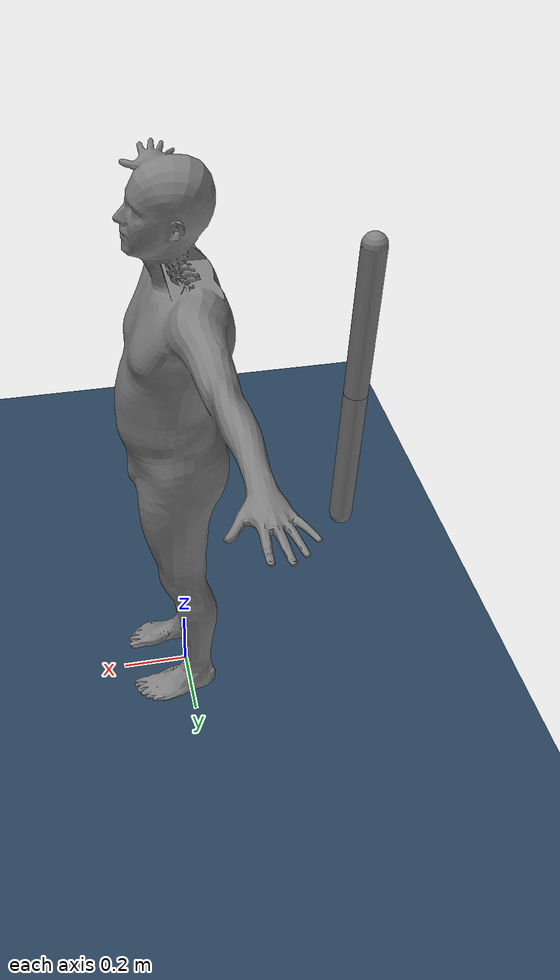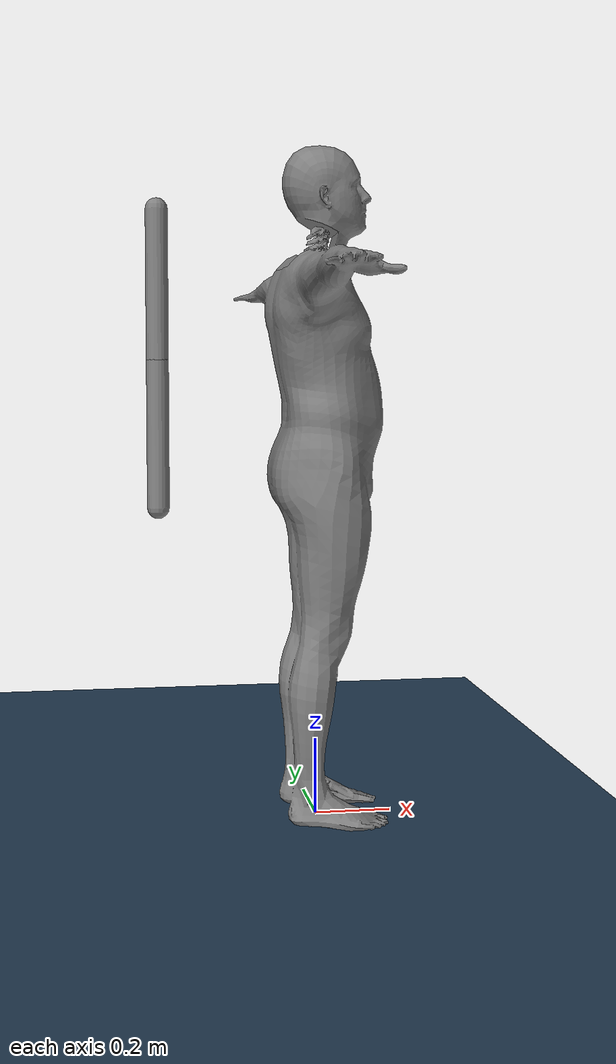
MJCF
<mujoco model="HumanRobotPhysicalContact">

    <!-- 编译器选项 -->
    <compiler meshdir="./" autolimits="true" angle="radian" />

    <!-- 0.002 is better-->
    <option timestep="0.002" iterations="100" ls_iterations="50" solver="Newton">
        <flag eulerdamp="enable" />
    </option>

    <!-- 模型统计信息 meansize: 物体的平均大小，用于自动调整渲染和相机设置 -->
    <statistic meansize=".05" center="0 0 0.3" extent="1" />

    <visual>
        <!-- 全局背景/雾颜色和透明度 -->
        <rgba haze="0.15 0.25 0.35 1" />
        <!-- 相关属性扩展：offwidth,离屏渲染的​​分辨率, elevation:相机的​​仰角, azimuth:相机的​​方位角 -->
        <global offwidth="2560" offheight="1440" elevation="-30" azimuth="120" />
        <!-- 渲染质量设置,阴影贴图的分辨率（4096表示高质量阴影） -->
        <quality shadowsize="4096" />
        <!-- 渲染参数设置 -->
        <map stiffness="700" shadowscale="0.5" fogstart="1" fogend="15" zfar="40" haze="1"
            force="0.1" />
    </visual>

    <asset>
        <mesh name="human_body_stl" file="human_body_without_neck.stl" />
        <texture type="skybox" builtin="gradient" rgb1="0.52734375 0.8046875 0.91796875"
            rgb2="0 0 0" width="512" height="3072" />
        <texture name="grid" type="2d" builtin="checker" width="512" height="512" rgb1=".1 .2 .3"
            rgb2=".2 .3 .4" />
        <material name="grid" texture="grid" texrepeat="1 1" texuniform="true" reflectance=".2" />
    </asset>

    <extension>
        <plugin plugin="mujoco.HumanRobotPhysicalContact" />
    </extension>

    <size memory="10M" />

    <worldbody>
        <plugin plugin="mujoco.HumanRobotPhysicalContact">
            <config key="config" value="model/plugin/simplesoft/config_test_human_neck.json" />
        </plugin>

        <light directional="true" diffuse="0.4 0.4 0.4" specular="0.1 0.1 0.1" pos="0 0 5.0"
            dir="0 0 -1" castshadow="false" />
        <light directional="true" diffuse="0.6 0.6 0.6" specular="0.2 0.2 0.2" pos="0 0 4"
            dir="0 0 -1" />
        <geom name="ground" type="plane" pos="0 0 0" size="100 100 0.001" quat="1 0 0 0"
            material="grid" condim="3" contype="1" conaffinity="15" />

        <body name="human" pos="0 0 1.18" quat="0.5 0.5 0.5 0.5">
            <geom name="human_body" type="mesh" mesh="human_body_stl" contype="0" conaffinity="0" />
        </body>

        <body name="rob_link1" pos="-0.4 0.2 0.8" quat="1 0 0 0">
            <geom name="rob_link1_capsule" type="capsule" size="0.03 0.2" pos="0 0 0.2" />
            <joint name="J1" type="hinge" pos="0 0 0" axis="0 1 0" range="-1.5708 1.5708" />
            <body name="rob_link2" pos="0 0 0.4" quat="1 0 0 0">
                <geom name="rob_link2_capsule" type="capsule" size="0.03 0.2" pos="0 0 0.2" />
                <joint name="J2" type="hinge" pos="0 0 0" axis="0 1 0" range="-1.5708 1.5708" />
            </body>
        </body>

    </worldbody>

    <actuator>
        <position name="J1" joint="J1" ctrllimited="true" ctrlrange="-0.1 1.2" forcelimited="true"
            forcerange="-1000 1000" kp="1000" kv="20" />
        <position name="J2" joint="J2" ctrllimited="true" ctrlrange="-0.1 0.5" forcelimited="true"
            forcerange="-1000 1000" kp="100" kv="5" />
    </actuator>

</mujoco>
